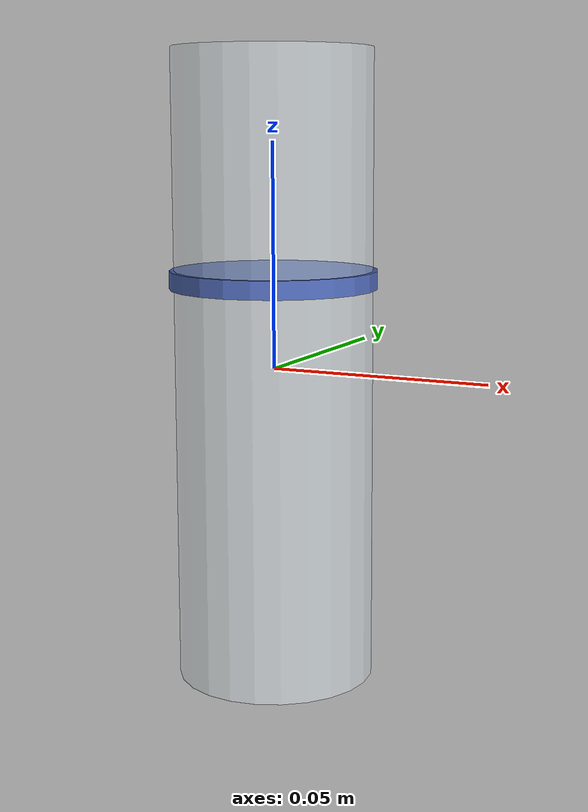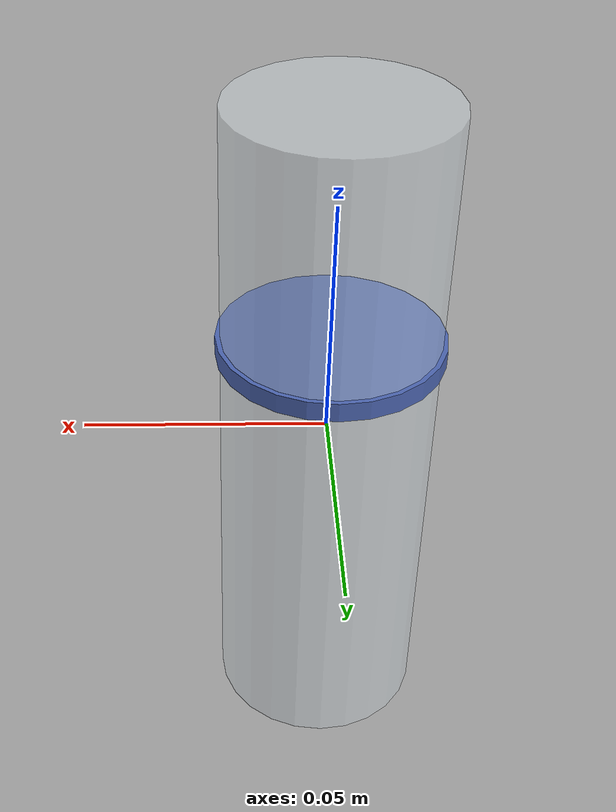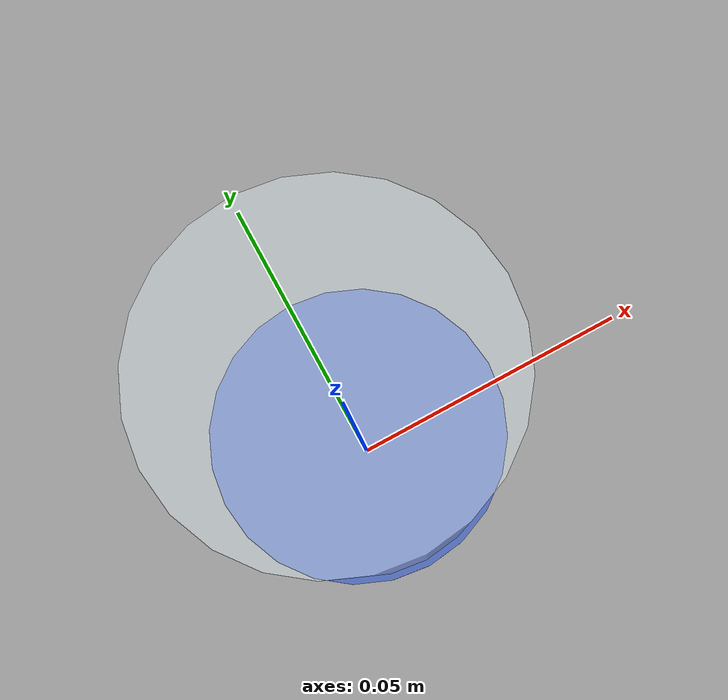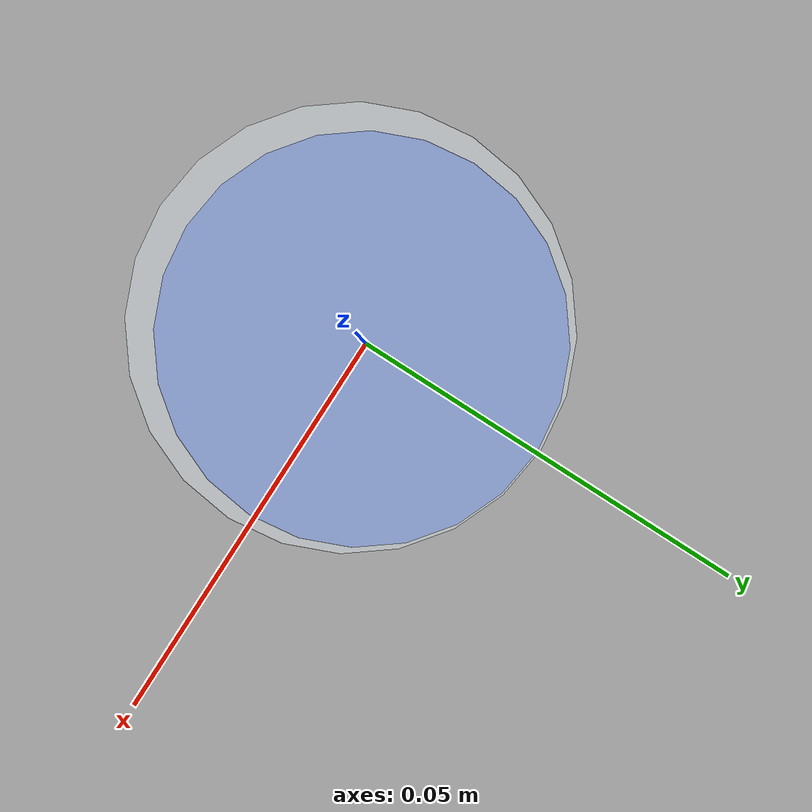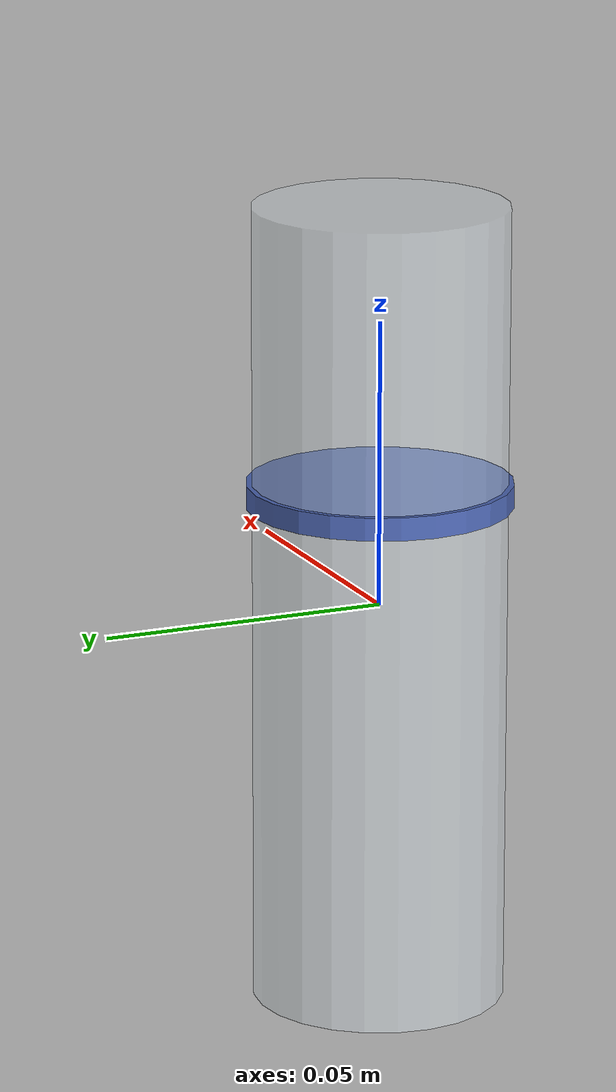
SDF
<?xml version="1.0"?>
<sdf version="1.6">
  <!-- 量筒(可抓取):透明感细高圆柱,直径 0.044 < 夹爪开度。 -->
  <model name="graduated_cylinder">
    <link name="link">
      <inertial>
        <mass>0.04</mass>
        <inertia>
          <ixx>7.02e-5</ixx><ixy>0</ixy><ixz>0</ixz>
          <iyy>7.02e-5</iyy><iyz>0</iyz><izz>9.68e-6</izz>
        </inertia>
      </inertial>
      <collision name="collision">
        <geometry>
          <cylinder>
            <radius>0.022</radius>
            <length>0.14</length>
          </cylinder>
        </geometry>
        <surface>
          <friction><ode><mu>1.0</mu><mu2>1.0</mu2></ode></friction>
          <contact>
            <ode>
              <kp>1e6</kp>
              <kd>1.0</kd>
              <min_depth>0.001</min_depth>
              <max_vel>0.01</max_vel>
            </ode>
          </contact>
        </surface>
      </collision>
      <visual name="visual">
        <transparency>0.35</transparency>
        <geometry>
          <cylinder>
            <radius>0.022</radius>
            <length>0.14</length>
          </cylinder>
        </geometry>
        <material>
          <ambient>0.80 0.88 0.92 0.4</ambient>
          <diffuse>0.88 0.93 0.96 0.4</diffuse>
          <specular>1.0 1.0 1.0 1.0</specular>
          <shininess>128</shininess>
          <double_sided>true</double_sided>
        </material>
      </visual>
      <!-- 刻度线(视觉) -->
      <visual name="visual_scale">
        <pose>0 0 0.02 0 0 0</pose>
        <geometry>
          <cylinder>
            <radius>0.023</radius>
            <length>0.004</length>
          </cylinder>
        </geometry>
        <material>
          <ambient>0.25 0.30 0.60 1</ambient>
          <diffuse>0.30 0.40 0.70 1</diffuse>
        </material>
      </visual>
    </link>
  </model>
</sdf>
